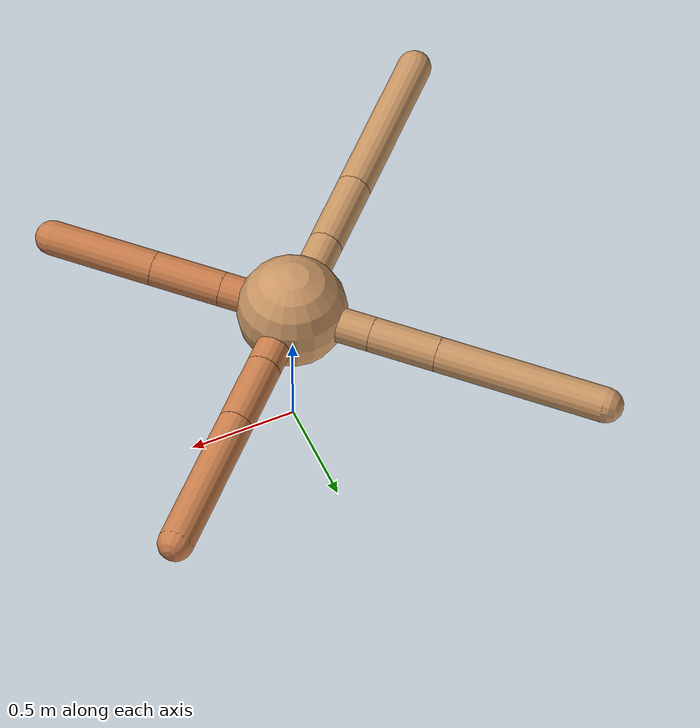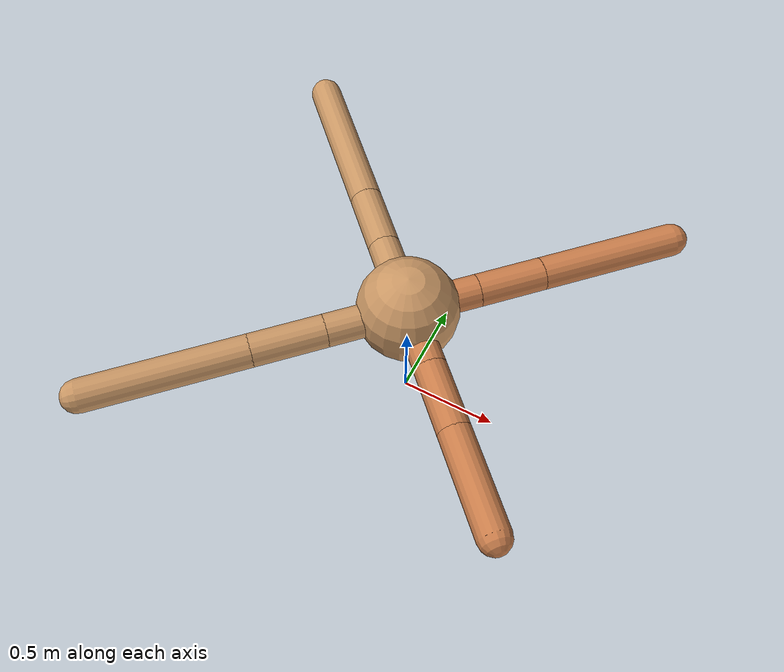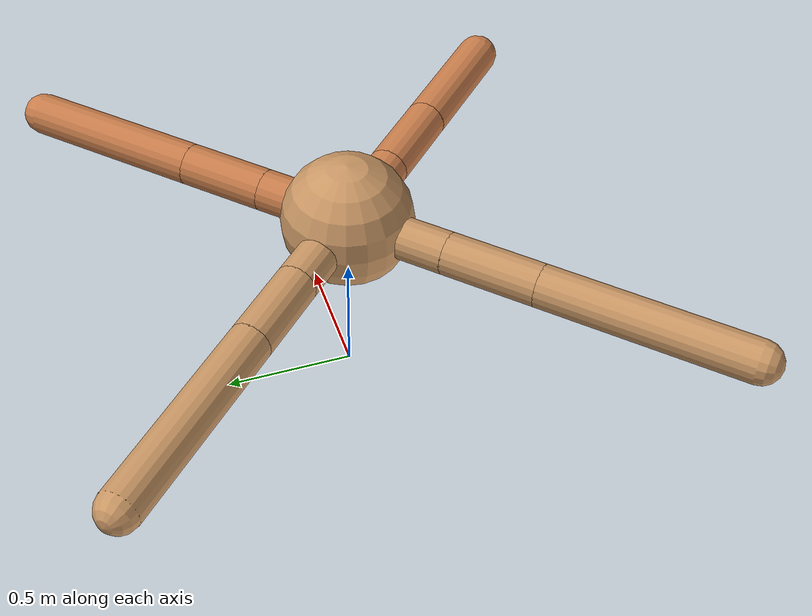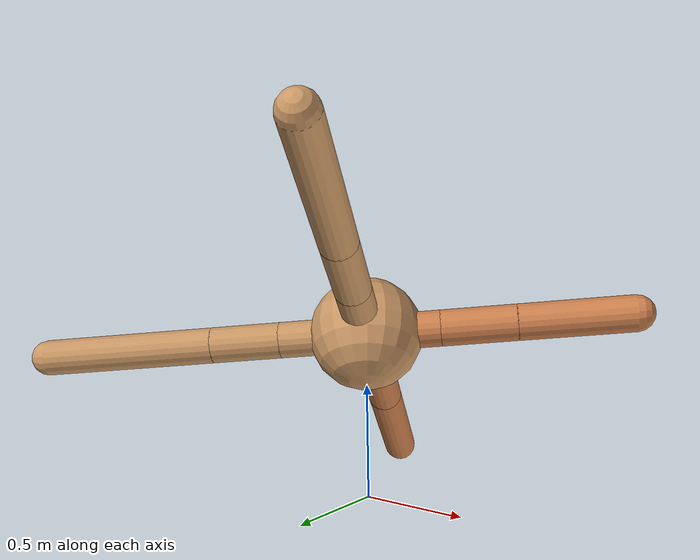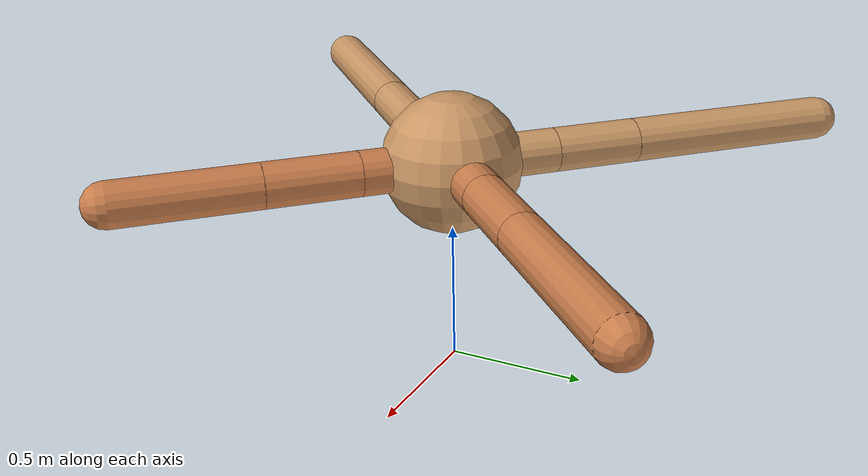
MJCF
<mujoco model="ant">
  <compiler angle="degree" coordinate="local" inertiafromgeom="true" />
  <option integrator="RK4" timestep="0.01" />
  <custom>
    <numeric data="0.0 0.0 0.55 1.0 0.0 0.0 0.0 0.0 1.0 0.0 -1.0 0.0 -1.0 0.0 1.0" name="init_qpos" />
  </custom>
  <default>
    <joint armature="1" damping="1" limited="true" />
    <geom conaffinity="0" condim="3" density="5.0" friction="1.5 0.1 0.1" margin="0.01" rgba="0.8 0.6 0.4 1" />
  </default>
  <worldbody>
    <body name="torso" pos="0 0 0.75">
      <geom name="torso_geom" pos="0 0 0" size="0.25" type="sphere" />

      <body name="front_left_leg" pos="0 0 0">
        <geom fromto="0.0 0.0 0.0 0.2480381143852403 0.2480381143852403 0.0" name="aux_1_geom" size="0.08" type="capsule" rgba=".8 .5 .3 1" />
        <body name="aux_1" pos="0.2480381143852403 0.2480381143852403 0.0">
          <joint axis="0 0 1" name="hip_1" pos="0.0 0.0 0.0" range="-40 40" type="hinge" />
          <geom fromto="0.0 0.0 0.0 0.23342744479430616 0.23342744479430616 0.0" name="left_leg_geom" size="0.08" type="capsule" rgba=".8 .5 .3 1" />
          <body pos="0.23342744479430616 0.23342744479430616 0.0" name="front_left_foot">
            <joint axis="-1 1 0" name="ankle_1" pos="0.0 0.0 0.0" range="30 100" type="hinge" />
            <geom fromto="0.0 0.0 0.0 0.4875098822061015 0.4875098822061015 0.0" name="left_ankle_geom" size="0.08" type="capsule" rgba=".8 .5 .3 1" />
          </body>
        </body>
      </body>
      <body name="front_right_leg" pos="0 0 0">
        <geom fromto="0.0 0.0 0.0 -0.2712090988213393 0.2712090988213393 0.0" name="aux_2_geom" size="0.08" type="capsule" />
        <body name="aux_2" pos="-0.2712090988213393 0.2712090988213393 0.0">
          <joint axis="0 0 1" name="hip_2" pos="0.0 0.0 0.0" range="-40 40" type="hinge" />
          <geom fromto="0.0 0.0 0.0 -0.2209506302281116 0.2209506302281116 0.0" name="right_leg_geom" size="0.08" type="capsule" />
          <body pos="-0.2209506302281116 0.2209506302281116 0.0" name="front_right_foot">
            <joint axis="1 1 0" name="ankle_2" pos="0.0 0.0 0.0" range="-100 -30" type="hinge" />
            <geom fromto="0.0 0.0 0.0 -0.5511499826421473 0.5511499826421473 0.0" name="right_ankle_geom" size="0.08" type="capsule" />
          </body>
        </body>
      </body>
      <body name="left_back_leg" pos="0 0 0">
        <geom fromto="0.0 0.0 0.0 -0.2866142721600171 -0.2866142721600171 0.0" name="aux_3_geom" size="0.08" type="capsule" />
        <body name="aux_3" pos="-0.2866142721600171 -0.2866142721600171 0.0">
          <joint axis="0 0 1" name="hip_3" pos="0.0 0.0 0.0" range="-40 40" type="hinge" />
          <geom fromto="0.0 0.0 0.0 -0.2535640920886985 -0.2535640920886985 0.0" name="back_leg_geom" size="0.08" type="capsule" />
          <body pos="-0.2535640920886985 -0.2535640920886985 0.0" name="left_back_foot">
            <joint axis="-1 1 0" name="ankle_3" pos="0.0 0.0 0.0" range="-100 -30" type="hinge" />
            <geom fromto="0.0 0.0 0.0 -0.5584766057326886 -0.5584766057326886 0.0" name="third_ankle_geom" size="0.08" type="capsule" />
          </body>
        </body>
      </body>
      <body name="right_back_leg" pos="0 0 0">
        <geom fromto="0.0 0.0 0.0 0.2340551567496852 -0.2340551567496852 0.0" name="aux_4_geom" size="0.08" type="capsule" rgba=".8 .5 .3 1" />
        <body name="aux_4" pos="0.2340551567496852 -0.2340551567496852 0.0">
          <joint axis="0 0 1" name="hip_4" pos="0.0 0.0 0.0" range="-40 40" type="hinge" />
          <geom fromto="0.0 0.0 0.0 0.23422258800977144 -0.23422258800977144 0.0" name="rightback_leg_geom" size="0.08" type="capsule" rgba=".8 .5 .3 1" />
          <body pos="0.23422258800977144 -0.23422258800977144 0.0" name="right_back_foot">
            <joint axis="1 1 0" name="ankle_4" pos="0.0 0.0 0.0" range="30 100" type="hinge" />
            <geom fromto="0.0 0.0 0.0 0.35287707319597666 -0.35287707319597666 0.0" name="fourth_ankle_geom" size="0.08" type="capsule" rgba=".8 .5 .3 1" />
          </body>
        </body>
      </body>
    </body>
  </worldbody>
  <actuator>
    <motor ctrllimited="true" ctrlrange="-1.0 1.0" joint="hip_4" gear="150" />
    <motor ctrllimited="true" ctrlrange="-1.0 1.0" joint="ankle_4" gear="150" />
    <motor ctrllimited="true" ctrlrange="-1.0 1.0" joint="hip_1" gear="150" />
    <motor ctrllimited="true" ctrlrange="-1.0 1.0" joint="ankle_1" gear="150" />
    <motor ctrllimited="true" ctrlrange="-1.0 1.0" joint="hip_2" gear="150" />
    <motor ctrllimited="true" ctrlrange="-1.0 1.0" joint="ankle_2" gear="150" />
    <motor ctrllimited="true" ctrlrange="-1.0 1.0" joint="hip_3" gear="150" />
    <motor ctrllimited="true" ctrlrange="-1.0 1.0" joint="ankle_3" gear="150" />
  </actuator>
</mujoco>
